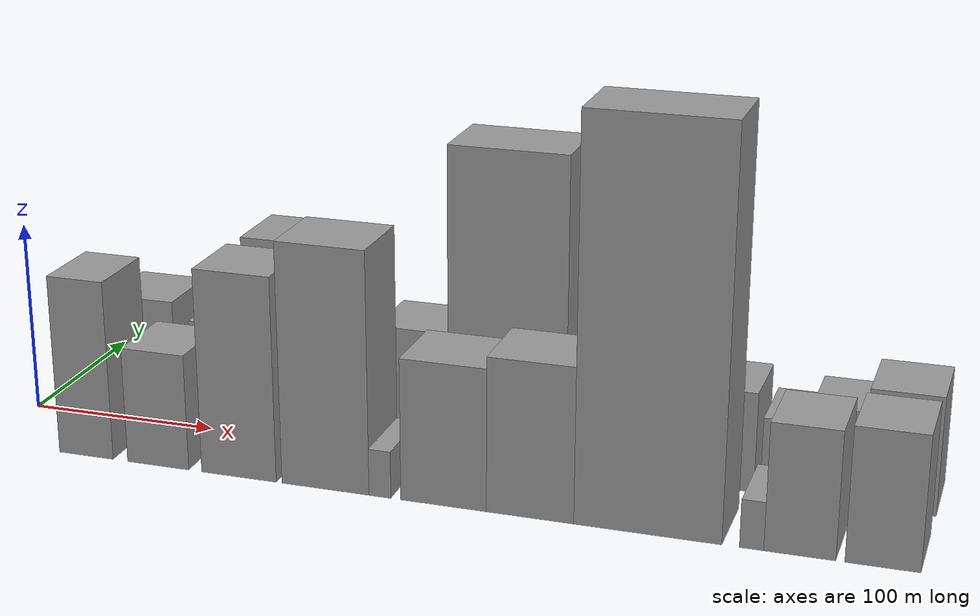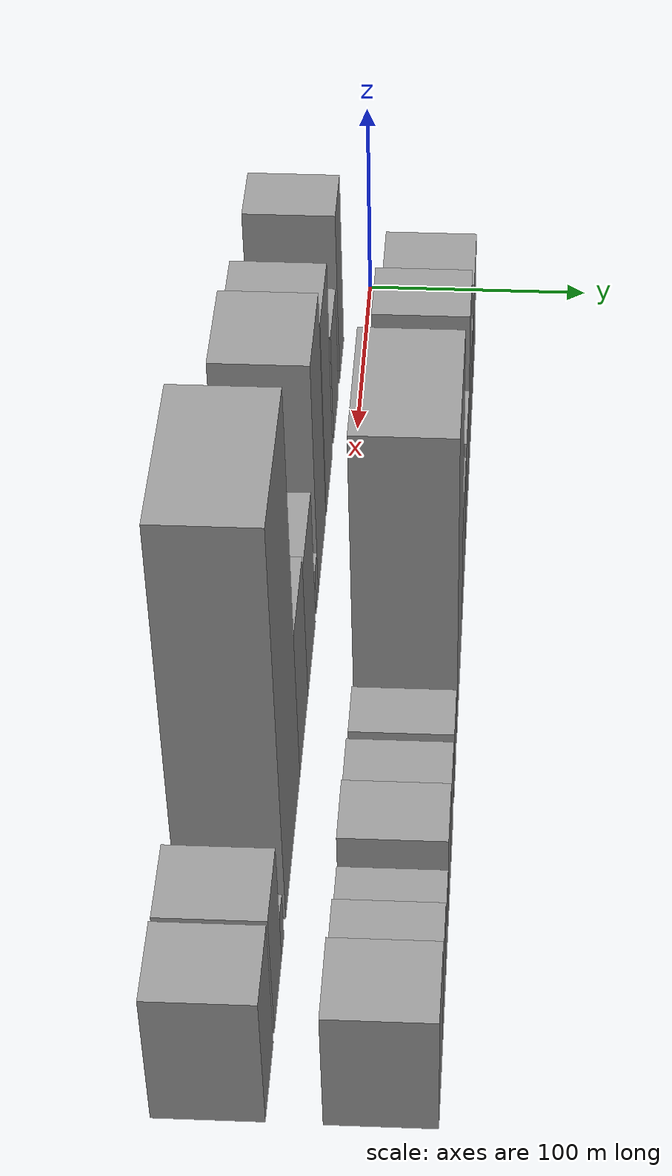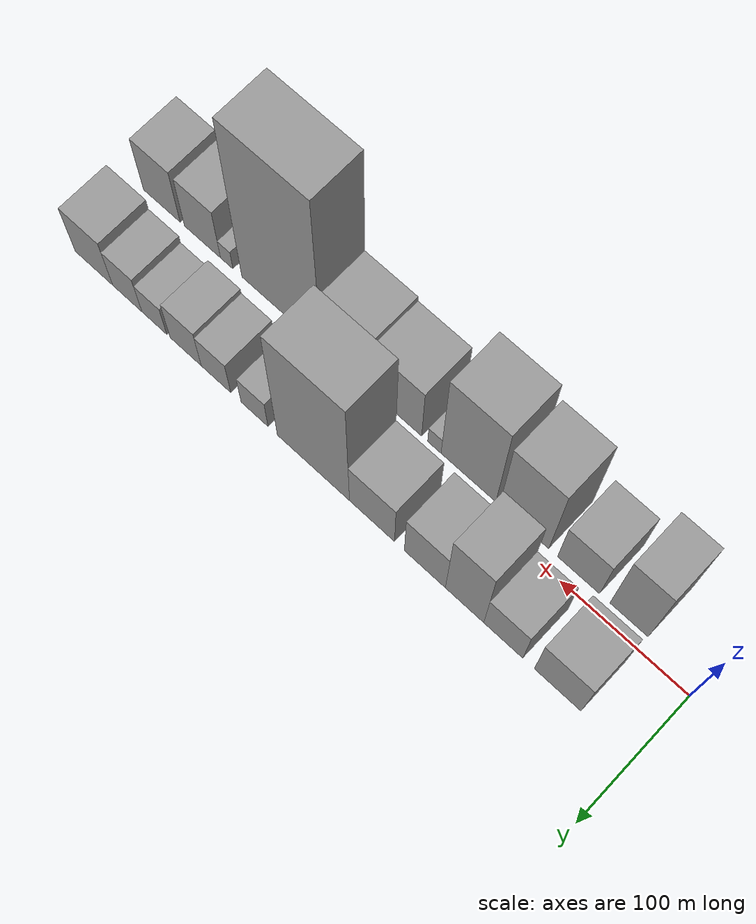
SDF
<sdf version="1.6">
 <world name="default">
  <scene>
   <sky><clouds><speed>12</speed></clouds></sky>
   <ambient>0.4 0.4 0.4 1</ambient>
   <background>0.7 0.7 0.7 1</background>
   <shadows>1</shadows>
  </scene>
  <gravity>0 0 -9.8066</gravity>
  <magnetic_field>6e-06 2.3e-05 -4.2e-05</magnetic_field>
  <physics default="0" name="default_physics" type="ode">
   <ode>
    <solver>
     <type>quick</type>
     <iters>10</iters>
     <sor>1.0</sor>
     <use_dynamic_moi_rescaling>0</use_dynamic_moi_rescaling>
    </solver>
    <constraints>
     <cfm>0</cfm>
     <erp>0.2</erp>
     <contact_max_correcting_vel>100</contact_max_correcting_vel>
     <contact_surface_layer>0.001</contact_surface_layer>
    </constraints>
   </ode>
   <max_step_size>0.004</max_step_size>
   <real_time_factor>1</real_time_factor>
   <real_time_update_rate>250</real_time_update_rate>
  </physics>
  <light name="sun" type="directional">
   <pose>0 0 10 0 0 0</pose>
   <diffuse>0.8 0.8 0.8 1</diffuse>
   <specular>0.2 0.2 0.2 1</specular>
   <attenuation>
    <range>1000</range>
    <constant>0.9</constant>
    <linear>0.01</linear>
    <quadratic>0.001</quadratic>
   </attenuation>
   <direction>-0.5 0.1 -0.9</direction>
  </light>
  <model name="building_1">
   <static>1</static>
   <pose>58.0597 30.0000 0 0.000000 0.000000 1.570796</pose>
   <link name="link">
    <pose>0 0 31.50 0 0 0</pose>
    <collision name="collision"><geometry><box><size>40.0000 36.1194 63.0000</size></box></geometry></collision>
    <visual name="visual">
     <cast_shadows>0</cast_shadows>
     <geometry><box><size>40.0000 36.1194 63.0000</size></box></geometry>
     <material>
      <script>
       <uri>model://grey_wall/materials/scripts</uri>
       <uri>model://grey_wall/materials/textures</uri>
       <name>vrc/grey_wall</name>
      </script>
     </material>
    </visual>
   </link>
  </model>
  <model name="building_2">
   <static>1</static>
   <pose>100.5278 30.0000 0 0.000000 0.000000 1.570796</pose>
   <link name="link">
    <pose>0 0 27.00 0 0 0</pose>
    <collision name="collision"><geometry><box><size>40.0000 30.8169 54.0000</size></box></geometry></collision>
    <visual name="visual">
     <cast_shadows>0</cast_shadows>
     <geometry><box><size>40.0000 30.8169 54.0000</size></box></geometry>
     <material>
      <script>
       <uri>model://grey_wall/materials/scripts</uri>
       <uri>model://grey_wall/materials/textures</uri>
       <name>vrc/grey_wall</name>
      </script>
     </material>
    </visual>
   </link>
  </model>
  <model name="building_3">
   <static>1</static>
   <pose>131.2874 30.0000 0 0.000000 0.000000 1.570796</pose>
   <link name="link">
    <pose>0 0 51.00 0 0 0</pose>
    <collision name="collision"><geometry><box><size>40.0000 30.7022 102.0000</size></box></geometry></collision>
    <visual name="visual">
     <cast_shadows>0</cast_shadows>
     <geometry><box><size>40.0000 30.7022 102.0000</size></box></geometry>
     <material>
      <script>
       <uri>model://grey_wall/materials/scripts</uri>
       <uri>model://grey_wall/materials/textures</uri>
       <name>vrc/grey_wall</name>
      </script>
     </material>
    </visual>
   </link>
  </model>
  <model name="building_4">
   <static>1</static>
   <pose>163.2585 30.0000 0 0.000000 0.000000 1.570796</pose>
   <link name="link">
    <pose>0 0 31.50 0 0 0</pose>
    <collision name="collision"><geometry><box><size>40.0000 33.2402 63.0000</size></box></geometry></collision>
    <visual name="visual">
     <cast_shadows>0</cast_shadows>
     <geometry><box><size>40.0000 33.2402 63.0000</size></box></geometry>
     <material>
      <script>
       <uri>model://grey_wall/materials/scripts</uri>
       <uri>model://grey_wall/materials/textures</uri>
       <name>vrc/grey_wall</name>
      </script>
     </material>
    </visual>
   </link>
  </model>
  <model name="building_5">
   <static>1</static>
   <pose>206.4949 30.0000 0 0.000000 0.000000 1.570796</pose>
   <link name="link">
    <pose>0 0 31.50 0 0 0</pose>
    <collision name="collision"><geometry><box><size>40.0000 37.2326 63.0000</size></box></geometry></collision>
    <visual name="visual">
     <cast_shadows>0</cast_shadows>
     <geometry><box><size>40.0000 37.2326 63.0000</size></box></geometry>
     <material>
      <script>
       <uri>model://grey_wall/materials/scripts</uri>
       <uri>model://grey_wall/materials/textures</uri>
       <name>vrc/grey_wall</name>
      </script>
     </material>
    </visual>
   </link>
  </model>
  <model name="building_6">
   <static>1</static>
   <pose>255.5229 30.0000 0 0.000000 0.000000 1.570796</pose>
   <link name="link">
    <pose>0 0 79.50 0 0 0</pose>
    <collision name="collision"><geometry><box><size>40.0000 60.8234 159.0000</size></box></geometry></collision>
    <visual name="visual">
     <cast_shadows>0</cast_shadows>
     <geometry><box><size>40.0000 60.8234 159.0000</size></box></geometry>
     <material>
      <script>
       <uri>model://grey_wall/materials/scripts</uri>
       <uri>model://grey_wall/materials/textures</uri>
       <name>vrc/grey_wall</name>
      </script>
     </material>
    </visual>
   </link>
  </model>
  <model name="building_7">
   <static>1</static>
   <pose>305.5388 30.0000 0 0.000000 0.000000 1.570796</pose>
   <link name="link">
    <pose>0 0 19.50 0 0 0</pose>
    <collision name="collision"><geometry><box><size>40.0000 23.2084 39.0000</size></box></geometry></collision>
    <visual name="visual">
     <cast_shadows>0</cast_shadows>
     <geometry><box><size>40.0000 23.2084 39.0000</size></box></geometry>
     <material>
      <script>
       <uri>model://grey_wall/materials/scripts</uri>
       <uri>model://grey_wall/materials/textures</uri>
       <name>vrc/grey_wall</name>
      </script>
     </material>
    </visual>
   </link>
  </model>
  <model name="building_8">
   <static>1</static>
   <pose>339.0068 30.0000 0 0.000000 0.000000 1.570796</pose>
   <link name="link">
    <pose>0 0 22.50 0 0 0</pose>
    <collision name="collision"><geometry><box><size>40.0000 25.7276 45.0000</size></box></geometry></collision>
    <visual name="visual">
     <cast_shadows>0</cast_shadows>
     <geometry><box><size>40.0000 25.7276 45.0000</size></box></geometry>
     <material>
      <script>
       <uri>model://grey_wall/materials/scripts</uri>
       <uri>model://grey_wall/materials/textures</uri>
       <name>vrc/grey_wall</name>
      </script>
     </material>
    </visual>
   </link>
  </model>
  <model name="building_9">
   <static>1</static>
   <pose>365.6375 30.0000 0 0.000000 0.000000 1.570796</pose>
   <link name="link">
    <pose>0 0 25.50 0 0 0</pose>
    <collision name="collision"><geometry><box><size>40.0000 27.5338 51.0000</size></box></geometry></collision>
    <visual name="visual">
     <cast_shadows>0</cast_shadows>
     <geometry><box><size>40.0000 27.5338 51.0000</size></box></geometry>
     <material>
      <script>
       <uri>model://grey_wall/materials/scripts</uri>
       <uri>model://grey_wall/materials/textures</uri>
       <name>vrc/grey_wall</name>
      </script>
     </material>
    </visual>
   </link>
  </model>
  <model name="building_10">
   <static>1</static>
   <pose>393.4805 30.0000 0 0.000000 0.000000 1.570796</pose>
   <link name="link">
    <pose>0 0 19.50 0 0 0</pose>
    <collision name="collision"><geometry><box><size>40.0000 22.1523 39.0000</size></box></geometry></collision>
    <visual name="visual">
     <cast_shadows>0</cast_shadows>
     <geometry><box><size>40.0000 22.1523 39.0000</size></box></geometry>
     <material>
      <script>
       <uri>model://grey_wall/materials/scripts</uri>
       <uri>model://grey_wall/materials/textures</uri>
       <name>vrc/grey_wall</name>
      </script>
     </material>
    </visual>
   </link>
  </model>
  <model name="building_11">
   <static>1</static>
   <pose>417.7669 30.0000 0 0.000000 0.000000 1.570796</pose>
   <link name="link">
    <pose>0 0 24.00 0 0 0</pose>
    <collision name="collision"><geometry><box><size>40.0000 26.4206 48.0000</size></box></geometry></collision>
    <visual name="visual">
     <cast_shadows>0</cast_shadows>
     <geometry><box><size>40.0000 26.4206 48.0000</size></box></geometry>
     <material>
      <script>
       <uri>model://grey_wall/materials/scripts</uri>
       <uri>model://grey_wall/materials/textures</uri>
       <name>vrc/grey_wall</name>
      </script>
     </material>
    </visual>
   </link>
  </model>
  <model name="building_12">
   <static>1</static>
   <pose>448.1308 30.0000 0 0.000000 0.000000 1.570796</pose>
   <link name="link">
    <pose>0 0 30.00 0 0 0</pose>
    <collision name="collision"><geometry><box><size>40.0000 34.3073 60.0000</size></box></geometry></collision>
    <visual name="visual">
     <cast_shadows>0</cast_shadows>
     <geometry><box><size>40.0000 34.3073 60.0000</size></box></geometry>
     <material>
      <script>
       <uri>model://grey_wall/materials/scripts</uri>
       <uri>model://grey_wall/materials/textures</uri>
       <name>vrc/grey_wall</name>
      </script>
     </material>
    </visual>
   </link>
  </model>
  <model name="building_13">
   <static>1</static>
   <pose>54.8629 -30.0000 0 0.000000 0.000000 1.570796</pose>
   <link name="link">
    <pose>0 0 46.50 0 0 0</pose>
    <collision name="collision"><geometry><box><size>40.0000 29.7259 93.0000</size></box></geometry></collision>
    <visual name="visual">
     <cast_shadows>0</cast_shadows>
     <geometry><box><size>40.0000 29.7259 93.0000</size></box></geometry>
     <material>
      <script>
       <uri>model://grey_wall/materials/scripts</uri>
       <uri>model://grey_wall/materials/textures</uri>
       <name>vrc/grey_wall</name>
      </script>
     </material>
    </visual>
   </link>
  </model>
  <model name="building_14">
   <static>1</static>
   <pose>94.3045 -30.0000 0 0.000000 0.000000 1.570796</pose>
   <link name="link">
    <pose>0 0 30.00 0 0 0</pose>
    <collision name="collision"><geometry><box><size>40.0000 33.1572 60.0000</size></box></geometry></collision>
    <visual name="visual">
     <cast_shadows>0</cast_shadows>
     <geometry><box><size>40.0000 33.1572 60.0000</size></box></geometry>
     <material>
      <script>
       <uri>model://grey_wall/materials/scripts</uri>
       <uri>model://grey_wall/materials/textures</uri>
       <name>vrc/grey_wall</name>
      </script>
     </material>
    </visual>
   </link>
  </model>
  <model name="building_15">
   <static>1</static>
   <pose>137.6215 -30.0000 0 0.000000 0.000000 1.570796</pose>
   <link name="link">
    <pose>0 0 52.50 0 0 0</pose>
    <collision name="collision"><geometry><box><size>40.0000 39.4770 105.0000</size></box></geometry></collision>
    <visual name="visual">
     <cast_shadows>0</cast_shadows>
     <geometry><box><size>40.0000 39.4770 105.0000</size></box></geometry>
     <material>
      <script>
       <uri>model://grey_wall/materials/scripts</uri>
       <uri>model://grey_wall/materials/textures</uri>
       <name>vrc/grey_wall</name>
      </script>
     </material>
    </visual>
   </link>
  </model>
  <model name="building_16">
   <static>1</static>
   <pose>182.8412 -30.0000 0 0.000000 0.000000 1.570796</pose>
   <link name="link">
    <pose>0 0 61.50 0 0 0</pose>
    <collision name="collision"><geometry><box><size>40.0000 44.9625 123.0000</size></box></geometry></collision>
    <visual name="visual">
     <cast_shadows>0</cast_shadows>
     <geometry><box><size>40.0000 44.9625 123.0000</size></box></geometry>
     <material>
      <script>
       <uri>model://grey_wall/materials/scripts</uri>
       <uri>model://grey_wall/materials/textures</uri>
       <name>vrc/grey_wall</name>
      </script>
     </material>
    </visual>
   </link>
  </model>
  <model name="building_17">
   <static>1</static>
   <pose>210.8736 -30.0000 0 0.000000 0.000000 1.570796</pose>
   <link name="link">
    <pose>0 0 12.00 0 0 0</pose>
    <collision name="collision"><geometry><box><size>40.0000 11.1022 24.0000</size></box></geometry></collision>
    <visual name="visual">
     <cast_shadows>0</cast_shadows>
     <geometry><box><size>40.0000 11.1022 24.0000</size></box></geometry>
     <material>
      <script>
       <uri>model://grey_wall/materials/scripts</uri>
       <uri>model://grey_wall/materials/textures</uri>
       <name>vrc/grey_wall</name>
      </script>
     </material>
    </visual>
   </link>
  </model>
  <model name="building_18">
   <static>1</static>
   <pose>242.7309 -30.0000 0 0.000000 0.000000 1.570796</pose>
   <link name="link">
    <pose>0 0 36.00 0 0 0</pose>
    <collision name="collision"><geometry><box><size>40.0000 42.6126 72.0000</size></box></geometry></collision>
    <visual name="visual">
     <cast_shadows>0</cast_shadows>
     <geometry><box><size>40.0000 42.6126 72.0000</size></box></geometry>
     <material>
      <script>
       <uri>model://grey_wall/materials/scripts</uri>
       <uri>model://grey_wall/materials/textures</uri>
       <name>vrc/grey_wall</name>
      </script>
     </material>
    </visual>
   </link>
  </model>
  <model name="building_19">
   <static>1</static>
   <pose>285.2418 -30.0000 0 0.000000 0.000000 1.570796</pose>
   <link name="link">
    <pose>0 0 39.00 0 0 0</pose>
    <collision name="collision"><geometry><box><size>40.0000 42.4092 78.0000</size></box></geometry></collision>
    <visual name="visual">
     <cast_shadows>0</cast_shadows>
     <geometry><box><size>40.0000 42.4092 78.0000</size></box></geometry>
     <material>
      <script>
       <uri>model://grey_wall/materials/scripts</uri>
       <uri>model://grey_wall/materials/textures</uri>
       <name>vrc/grey_wall</name>
      </script>
     </material>
    </visual>
   </link>
  </model>
  <model name="building_20">
   <static>1</static>
   <pose>341.2370 -30.0000 0 0.000000 0.000000 1.570796</pose>
   <link name="link">
    <pose>0 0 99.00 0 0 0</pose>
    <collision name="collision"><geometry><box><size>40.0000 69.5810 198.0000</size></box></geometry></collision>
    <visual name="visual">
     <cast_shadows>0</cast_shadows>
     <geometry><box><size>40.0000 69.5810 198.0000</size></box></geometry>
     <material>
      <script>
       <uri>model://grey_wall/materials/scripts</uri>
       <uri>model://grey_wall/materials/textures</uri>
       <name>vrc/grey_wall</name>
      </script>
     </material>
    </visual>
   </link>
  </model>
  <model name="building_21">
   <static>1</static>
   <pose>389.5616 -30.0000 0 0.000000 0.000000 1.570796</pose>
   <link name="link">
    <pose>0 0 12.00 0 0 0</pose>
    <collision name="collision"><geometry><box><size>40.0000 11.0682 24.0000</size></box></geometry></collision>
    <visual name="visual">
     <cast_shadows>0</cast_shadows>
     <geometry><box><size>40.0000 11.0682 24.0000</size></box></geometry>
     <material>
      <script>
       <uri>model://grey_wall/materials/scripts</uri>
       <uri>model://grey_wall/materials/textures</uri>
       <name>vrc/grey_wall</name>
      </script>
     </material>
    </visual>
   </link>
  </model>
  <model name="building_22">
   <static>1</static>
   <pose>411.2969 -30.0000 0 0.000000 0.000000 1.570796</pose>
   <link name="link">
    <pose>0 0 31.50 0 0 0</pose>
    <collision name="collision"><geometry><box><size>40.0000 32.4023 63.0000</size></box></geometry></collision>
    <visual name="visual">
     <cast_shadows>0</cast_shadows>
     <geometry><box><size>40.0000 32.4023 63.0000</size></box></geometry>
     <material>
      <script>
       <uri>model://grey_wall/materials/scripts</uri>
       <uri>model://grey_wall/materials/textures</uri>
       <name>vrc/grey_wall</name>
      </script>
     </material>
    </visual>
   </link>
  </model>
  <model name="building_23">
   <static>1</static>
   <pose>448.2473 -30.0000 0 0.000000 0.000000 1.570796</pose>
   <link name="link">
    <pose>0 0 33.00 0 0 0</pose>
    <collision name="collision"><geometry><box><size>40.0000 33.4984 66.0000</size></box></geometry></collision>
    <visual name="visual">
     <cast_shadows>0</cast_shadows>
     <geometry><box><size>40.0000 33.4984 66.0000</size></box></geometry>
     <material>
      <script>
       <uri>model://grey_wall/materials/scripts</uri>
       <uri>model://grey_wall/materials/textures</uri>
       <name>vrc/grey_wall</name>
      </script>
     </material>
    </visual>
   </link>
  </model>
 </world>
</sdf>
